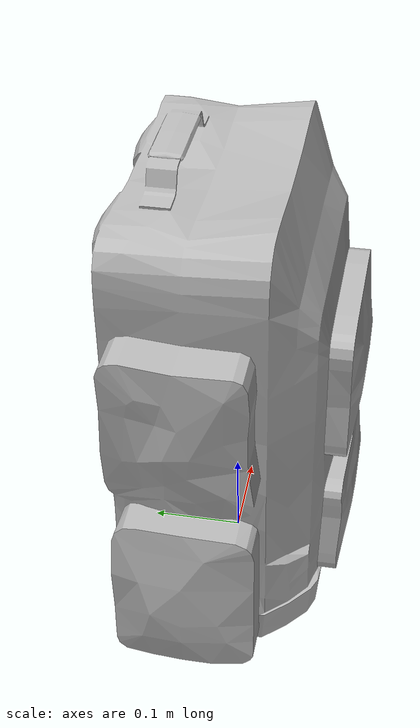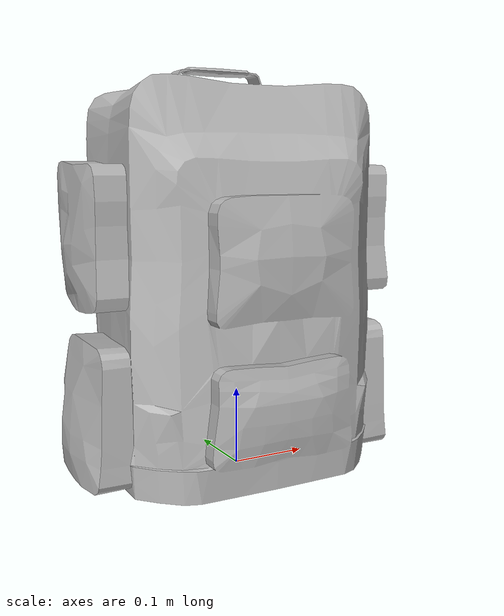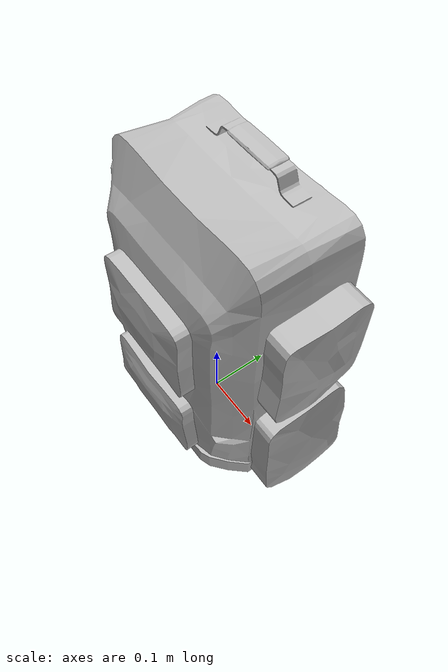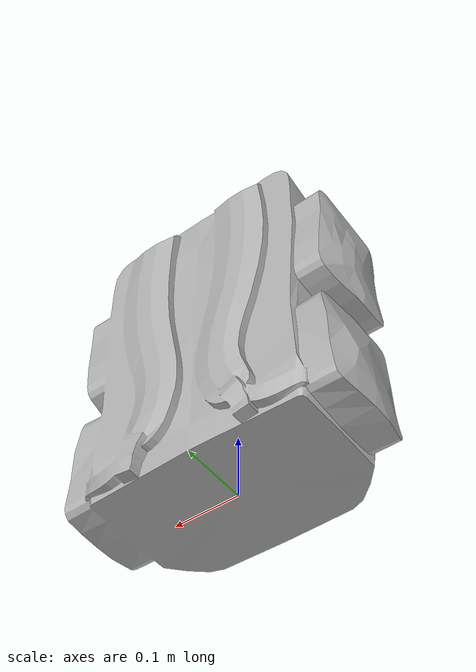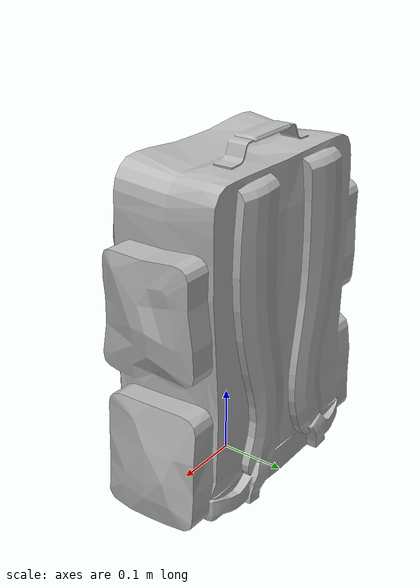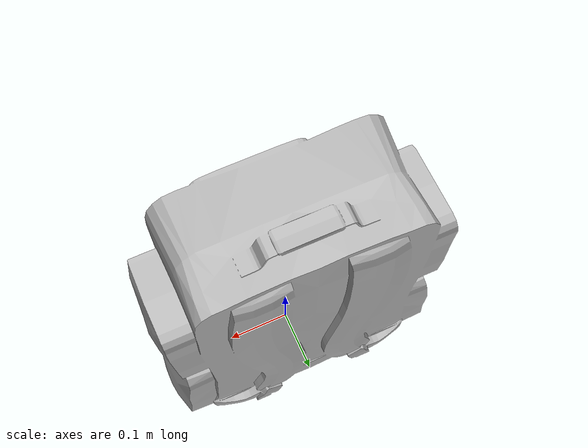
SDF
<?xml version='1.0' ?>
<sdf version='1.6'>
  <model name='Backpack'>
    <static>true</static>
    <link name='link'>
      <collision name='collision'>
        <geometry>
          <mesh>
            <uri>model://Backpack/meshes/Backpack.dae</uri>
          </mesh>
        </geometry>
      </collision>
      <visual name='visual'>
        <geometry>
          <mesh>
            <uri>model://Backpack/meshes/Backpack.dae</uri>
          </mesh>
        </geometry>
      </visual>
    </link>
  </model>
</sdf>
